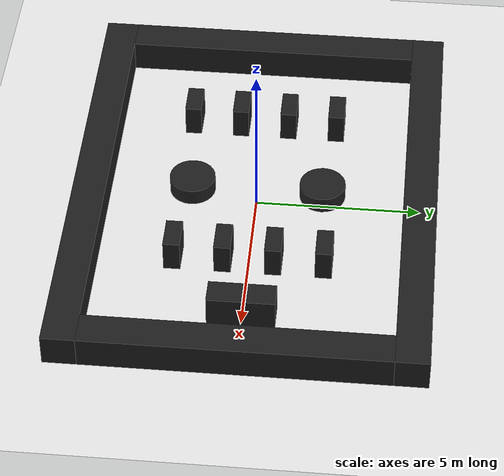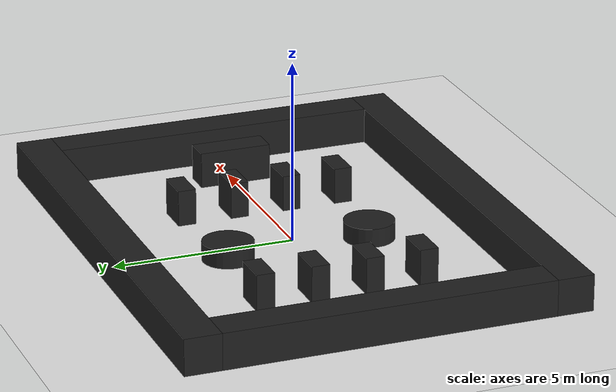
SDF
<sdf version="1.6">
 <world name="default">
  <plugin name="gazebo_ros_state" filename="libgazebo_ros_state.so">
   <ros><namespace>/gazebo</namespace></ros>
   <update_rate>10</update_rate>
  </plugin>
  <light name="sun" type="directional">
   <pose>0 0 10 0 -0 0</pose>
   <diffuse>0.8 0.8 0.8 1</diffuse>
   <specular>0.2 0.2 0.2 1</specular>
   <attenuation>
    <range>1000</range>
    <constant>0.9</constant>
    <linear>0.01</linear>
    <quadratic>0.001</quadratic>
   </attenuation>
   <direction>-0.5 0.1 -0.9</direction>
  </light>
  <model name="ground_plane">
   <static>1</static>
   <link name="link">
    <collision name="collision">
     <geometry><plane><normal>0 0 1</normal><size>100 100</size></plane></geometry>
     <surface><friction><ode><mu>100</mu><mu2>50</mu2></ode></friction></surface>
    </collision>
    <visual name="visual">
     <cast_shadows>0</cast_shadows>
     <geometry><plane><normal>0 0 1</normal><size>100 100</size></plane></geometry>
     <material>
      <script><uri>file://media/materials/scripts/gazebo.material</uri><name>Gazebo/White</name></script>
     </material>
    </visual>
   </link>
  </model>
  <gravity>0 0 -9.8</gravity>
  <magnetic_field>6e-06 2.3e-05 -4.2e-05</magnetic_field>
  <atmosphere type="adiabatic"/>
  <physics name="default_physics" default="0" type="ode">
   <max_step_size>0.001</max_step_size>
   <real_time_factor>1</real_time_factor>
   <real_time_update_rate>1000</real_time_update_rate>
  </physics>
  <scene><ambient>0.4 0.4 0.4 1</ambient><background>0.7 0.7 0.7 1</background><shadows>1</shadows></scene>
  <spherical_coordinates>
   <surface_model>EARTH_WGS84</surface_model>
   <latitude_deg>0</latitude_deg>
   <longitude_deg>0</longitude_deg>
   <elevation>0</elevation>
   <heading_deg>0</heading_deg>
  </spherical_coordinates>
  <model name="wall_0">
   <static>1</static>
   <pose>0 -5 0.5 0 0 0</pose>
   <link name="link">
    <inertial>
     <mass>1</mass>
     <inertia>
      <ixx>0.166667</ixx>
      <ixy>0</ixy>
      <ixz>0</ixz>
      <iyy>0.166667</iyy>
      <iyz>0</iyz>
      <izz>0.166667</izz>
     </inertia>
     <pose>0 -3.5 0.5 0 0 0</pose>
    </inertial>
    <collision name="collision"><geometry><box><size>14 1 1</size></box></geometry></collision>
    <visual name="visual">
     <geometry><box><size>14 1 1</size></box></geometry>
     <material>
      <script><name>Gazebo/FlatBlack</name><uri>file://media/materials/scripts/gazebo.material</uri></script>
     </material>
    </visual>
   </link>
  </model>
  <model name="wall_1">
   <static>1</static>
   <pose>0 5 0.5 0 0 0</pose>
   <link name="link">
    <inertial>
     <mass>1</mass>
     <inertia>
      <ixx>0.166667</ixx>
      <ixy>0</ixy>
      <ixz>0</ixz>
      <iyy>0.166667</iyy>
      <iyz>0</iyz>
      <izz>0.166667</izz>
     </inertia>
     <pose>3.5 0 0.5 0 0 0</pose>
    </inertial>
    <collision name="collision"><geometry><box><size>14 1 1</size></box></geometry></collision>
    <visual name="visual">
     <geometry><box><size>14 1 1</size></box></geometry>
     <material>
      <script><name>Gazebo/FlatBlack</name><uri>file://media/materials/scripts/gazebo.material</uri></script>
     </material>
    </visual>
   </link>
  </model>
  <model name="wall_2">
   <static>1</static>
   <pose>6.5 0 0.5 0 0 0</pose>
   <link name="link">
    <inertial>
     <mass>1</mass>
     <inertia>
      <ixx>0.166667</ixx>
      <ixy>0</ixy>
      <ixz>0</ixz>
      <iyy>0.166667</iyy>
      <iyz>0</iyz>
      <izz>0.166667</izz>
     </inertia>
     <pose>6.5 0 0.5 0 0 0</pose>
    </inertial>
    <collision name="collision"><geometry><box><size>1 9 1</size></box></geometry></collision>
    <visual name="visual">
     <geometry><box><size>1 9 1</size></box></geometry>
     <material>
      <script><name>Gazebo/FlatBlack</name><uri>file://media/materials/scripts/gazebo.material</uri></script>
     </material>
    </visual>
   </link>
  </model>
  <model name="wall_3">
   <static>1</static>
   <pose>-6.5 0 0.5 0 0 0</pose>
   <link name="link">
    <inertial>
     <mass>1</mass>
     <inertia>
      <ixx>0.166667</ixx>
      <ixy>0</ixy>
      <ixz>0</ixz>
      <iyy>0.166667</iyy>
      <iyz>0</iyz>
      <izz>0.166667</izz>
     </inertia>
     <pose>0 9.5 0.5 0 0 0</pose>
    </inertial>
    <collision name="collision"><geometry><box><size>1 9 1</size></box></geometry></collision>
    <visual name="visual">
     <geometry><box><size>1 9 1</size></box></geometry>
     <material>
      <script><name>Gazebo/FlatBlack</name><uri>file://media/materials/scripts/gazebo.material</uri></script>
     </material>
    </visual>
   </link>
  </model>
  <model name="pole_0">
   <static>1</static>
   <pose>-0.5 -2 0 0 0 0</pose>
   <link name="link">
    <inertial>
     <mass>1</mass>
     <inertia><ixx>0.145833</ixx><ixy>0</ixy><ixz>0</ixz><iyy>0.145833</iyy><iyz>0</iyz><izz>0.125</izz></inertia>
     <pose>-4.5 -4.5 0 0 -0 0</pose>
    </inertial>
    <collision name="collision">
     <geometry><cylinder><radius>0.7</radius><length>1</length></cylinder></geometry>
    </collision>
    <visual name="visual">
     <geometry><cylinder><radius>0.7</radius><length>1</length></cylinder></geometry>
     <material>
      <script><name>Gazebo/FlatBlack</name><uri>file://media/materials/scripts/gazebo.material</uri></script>
     </material>
    </visual>
   </link>
  </model>
  <model name="pole_1">
   <static>1</static>
   <pose>-0.5 2 0 0 0 0</pose>
   <link name="link">
    <inertial>
     <mass>1</mass>
     <inertia><ixx>0.145833</ixx><ixy>0</ixy><ixz>0</ixz><iyy>0.145833</iyy><iyz>0</iyz><izz>0.125</izz></inertia>
     <pose>4.5 -4.5 0 0 -0 0</pose>
    </inertial>
    <collision name="collision">
     <geometry><cylinder><radius>0.7</radius><length>1</length></cylinder></geometry>
    </collision>
    <visual name="visual">
     <geometry><cylinder><radius>0.7</radius><length>1</length></cylinder></geometry>
     <material>
      <script><name>Gazebo/FlatBlack</name><uri>file://media/materials/scripts/gazebo.material</uri></script>
     </material>
    </visual>
   </link>
  </model>
  <model name="box_0">
   <static>1</static>
   <pose>-3.5 2.25 0.5 0 0 0</pose>
   <link name="link">
    <inertial>
     <mass>1</mass>
     <inertia>
      <ixx>0.166667</ixx>
      <ixy>0</ixy>
      <ixz>0</ixz>
      <iyy>0.166667</iyy>
      <iyz>0</iyz>
      <izz>0.166667</izz>
     </inertia>
     <pose>-3.5 2 0.5 0 0 0</pose>
    </inertial>
    <collision name="collision"><geometry><box><size>1 0.5 1</size></box></geometry></collision>
    <visual name="visual">
     <geometry><box><size>1 0.5 1</size></box></geometry>
     <material>
      <script><name>Gazebo/FlatBlack</name><uri>file://media/materials/scripts/gazebo.material</uri></script>
     </material>
    </visual>
   </link>
  </model>
  <model name="box_1">
   <static>1</static>
   <pose>-3.5 0.75 0.5 0 0 0</pose>
   <link name="link">
    <inertial>
     <mass>1</mass>
     <inertia>
      <ixx>0.166667</ixx>
      <ixy>0</ixy>
      <ixz>0</ixz>
      <iyy>0.166667</iyy>
      <iyz>0</iyz>
      <izz>0.166667</izz>
     </inertia>
     <pose>-3.5 0.75 0.5 0 0 0</pose>
    </inertial>
    <collision name="collision"><geometry><box><size>1 0.5 1</size></box></geometry></collision>
    <visual name="visual">
     <geometry><box><size>1 0.5 1</size></box></geometry>
     <material>
      <script><name>Gazebo/FlatBlack</name><uri>file://media/materials/scripts/gazebo.material</uri></script>
     </material>
    </visual>
   </link>
  </model>
  <model name="box_2">
   <static>1</static>
   <pose>-3.5 -0.75 0.5 0 0 0</pose>
   <link name="link">
    <inertial>
     <mass>1</mass>
     <inertia>
      <ixx>0.166667</ixx>
      <ixy>0</ixy>
      <ixz>0</ixz>
      <iyy>0.166667</iyy>
      <iyz>0</iyz>
      <izz>0.166667</izz>
     </inertia>
     <pose>-3.5 0.75 0.5 0 0 0</pose>
    </inertial>
    <collision name="collision"><geometry><box><size>1 0.5 1</size></box></geometry></collision>
    <visual name="visual">
     <geometry><box><size>1 0.5 1</size></box></geometry>
     <material>
      <script><name>Gazebo/FlatBlack</name><uri>file://media/materials/scripts/gazebo.material</uri></script>
     </material>
    </visual>
   </link>
  </model>
  <model name="box_3">
   <static>1</static>
   <pose>-3.5 -2.25 0.5 0 0 0</pose>
   <link name="link">
    <inertial>
     <mass>1</mass>
     <inertia>
      <ixx>0.166667</ixx>
      <ixy>0</ixy>
      <ixz>0</ixz>
      <iyy>0.166667</iyy>
      <iyz>0</iyz>
      <izz>0.166667</izz>
     </inertia>
     <pose>-3.5 0.75 0.5 0 0 0</pose>
    </inertial>
    <collision name="collision"><geometry><box><size>1 0.5 1</size></box></geometry></collision>
    <visual name="visual">
     <geometry><box><size>1 0.5 1</size></box></geometry>
     <material>
      <script><name>Gazebo/FlatBlack</name><uri>file://media/materials/scripts/gazebo.material</uri></script>
     </material>
    </visual>
   </link>
  </model>
  <model name="box_4">
   <static>1</static>
   <pose>2.5 2.25 0.5 0 0 0</pose>
   <link name="link">
    <inertial>
     <mass>1</mass>
     <inertia>
      <ixx>0.166667</ixx>
      <ixy>0</ixy>
      <ixz>0</ixz>
      <iyy>0.166667</iyy>
      <iyz>0</iyz>
      <izz>0.166667</izz>
     </inertia>
     <pose>-3.5 0.75 0.5 0 0 0</pose>
    </inertial>
    <collision name="collision"><geometry><box><size>1 0.5 1</size></box></geometry></collision>
    <visual name="visual">
     <geometry><box><size>1 0.5 1</size></box></geometry>
     <material>
      <script><name>Gazebo/FlatBlack</name><uri>file://media/materials/scripts/gazebo.material</uri></script>
     </material>
    </visual>
   </link>
  </model>
  <model name="box_5">
   <static>1</static>
   <pose>2.5 0.75 0.5 0 0 0</pose>
   <link name="link">
    <inertial>
     <mass>1</mass>
     <inertia>
      <ixx>0.166667</ixx>
      <ixy>0</ixy>
      <ixz>0</ixz>
      <iyy>0.166667</iyy>
      <iyz>0</iyz>
      <izz>0.166667</izz>
     </inertia>
     <pose>-3.5 0.75 0.5 0 0 0</pose>
    </inertial>
    <collision name="collision"><geometry><box><size>1 0.5 1</size></box></geometry></collision>
    <visual name="visual">
     <geometry><box><size>1 0.5 1</size></box></geometry>
     <material>
      <script><name>Gazebo/FlatBlack</name><uri>file://media/materials/scripts/gazebo.material</uri></script>
     </material>
    </visual>
   </link>
  </model>
  <model name="box_6">
   <static>1</static>
   <pose>2.5 -0.75 0.5 0 0 0</pose>
   <link name="link">
    <inertial>
     <mass>1</mass>
     <inertia>
      <ixx>0.166667</ixx>
      <ixy>0</ixy>
      <ixz>0</ixz>
      <iyy>0.166667</iyy>
      <iyz>0</iyz>
      <izz>0.166667</izz>
     </inertia>
     <pose>-3.5 0.75 0.5 0 0 0</pose>
    </inertial>
    <collision name="collision"><geometry><box><size>1 0.5 1</size></box></geometry></collision>
    <visual name="visual">
     <geometry><box><size>1 0.5 1</size></box></geometry>
     <material>
      <script><name>Gazebo/FlatBlack</name><uri>file://media/materials/scripts/gazebo.material</uri></script>
     </material>
    </visual>
   </link>
  </model>
  <model name="box_7">
   <static>1</static>
   <pose>2.5 -2.25 0.5 0 0 0</pose>
   <link name="link">
    <inertial>
     <mass>1</mass>
     <inertia>
      <ixx>0.166667</ixx>
      <ixy>0</ixy>
      <ixz>0</ixz>
      <iyy>0.166667</iyy>
      <iyz>0</iyz>
      <izz>0.166667</izz>
     </inertia>
     <pose>-3.5 0.75 0.5 0 0 0</pose>
    </inertial>
    <collision name="collision"><geometry><box><size>1 0.5 1</size></box></geometry></collision>
    <visual name="visual">
     <geometry><box><size>1 0.5 1</size></box></geometry>
     <material>
      <script><name>Gazebo/FlatBlack</name><uri>file://media/materials/scripts/gazebo.material</uri></script>
     </material>
    </visual>
   </link>
  </model>
  <model name="box_8">
   <static>1</static>
   <pose>4.75 0 0.5 0 0 0</pose>
   <link name="link">
    <inertial>
     <mass>1</mass>
     <inertia>
      <ixx>0.166667</ixx>
      <ixy>0</ixy>
      <ixz>0</ixz>
      <iyy>0.166667</iyy>
      <iyz>0</iyz>
      <izz>0.166667</izz>
     </inertia>
     <pose>-3.5 0.75 0.5 0 0 0</pose>
    </inertial>
    <collision name="collision"><geometry><box><size>0.75 2 1</size></box></geometry></collision>
    <visual name="visual">
     <geometry><box><size>0.75 2 1</size></box></geometry>
     <material>
      <script><name>Gazebo/FlatBlack</name><uri>file://media/materials/scripts/gazebo.material</uri></script>
     </material>
    </visual>
   </link>
  </model>
 </world>
</sdf>
